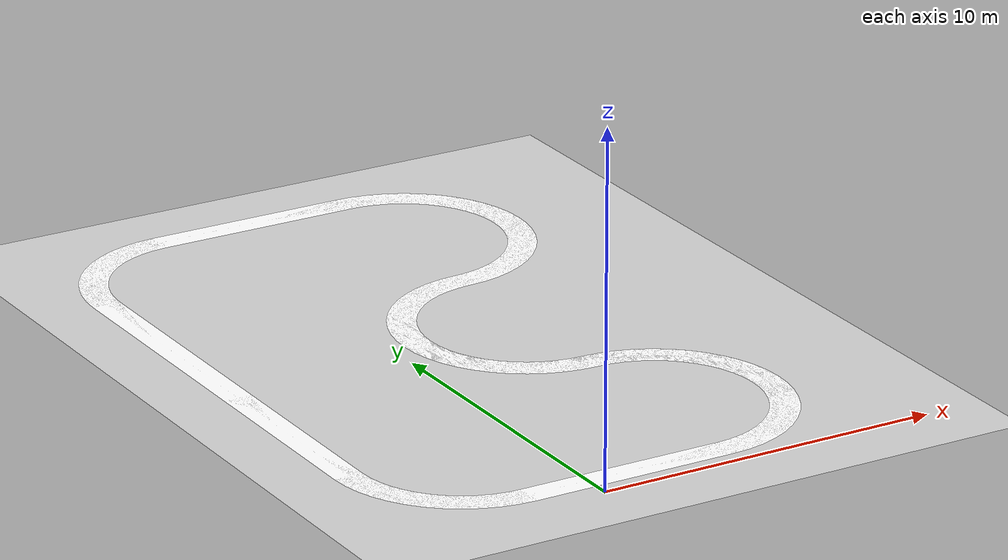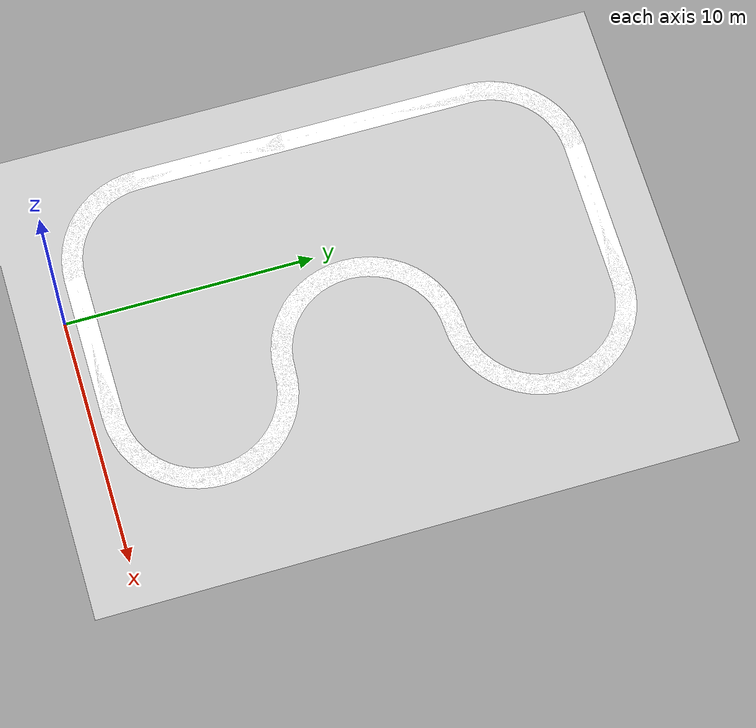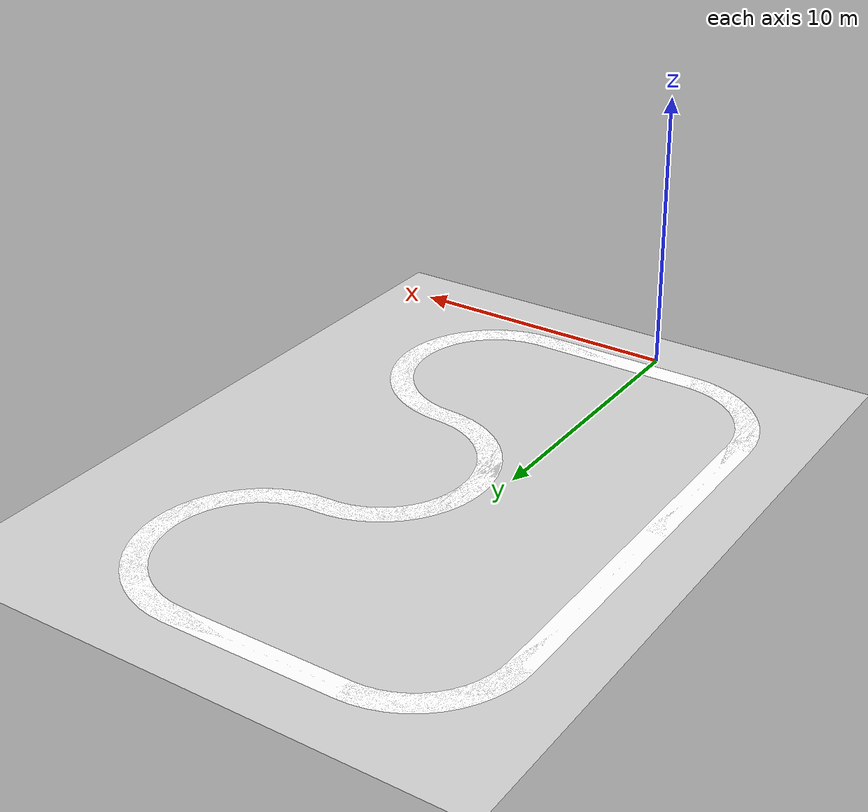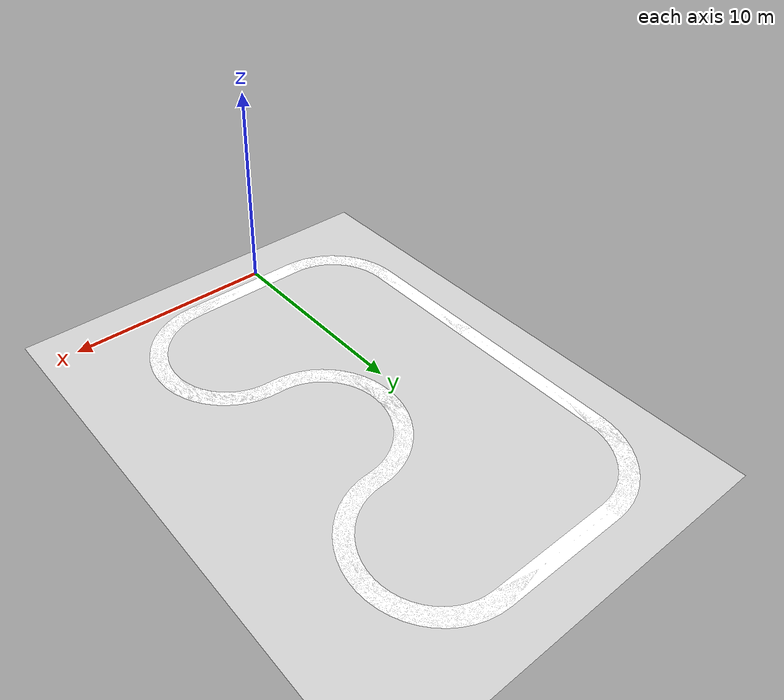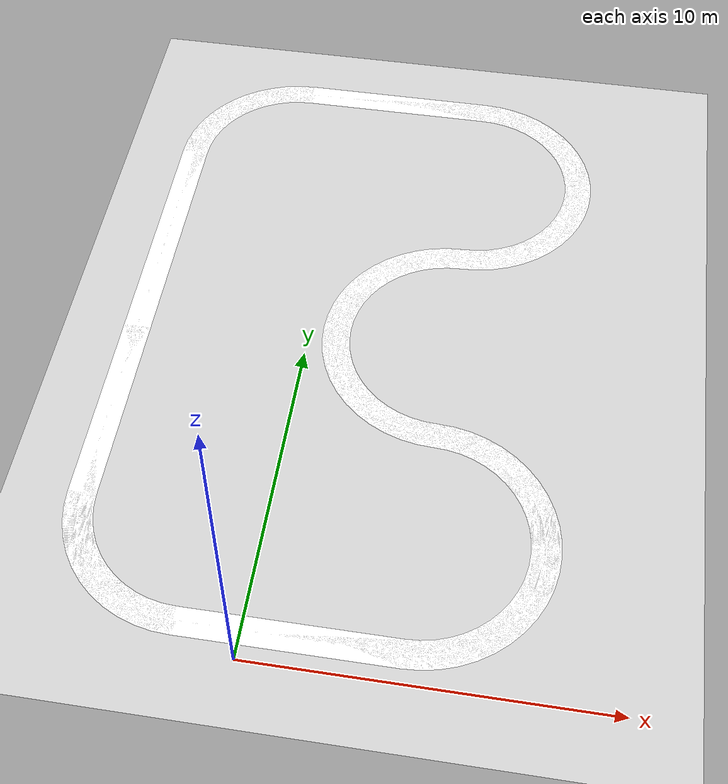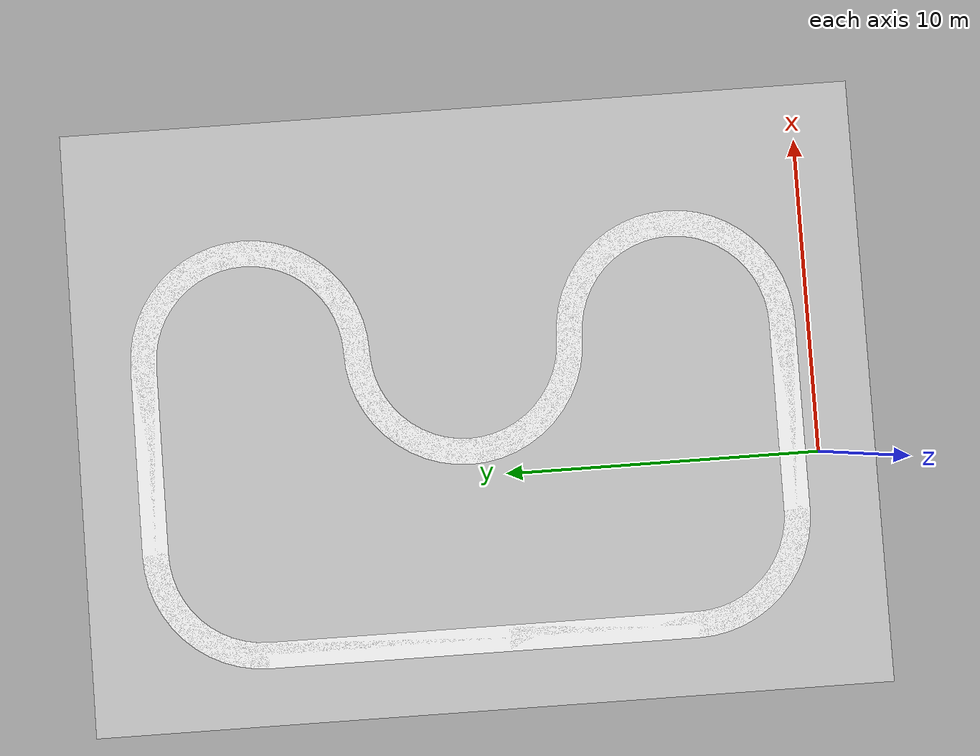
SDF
<?xml version="1.0" ?>
<sdf version="1.5">
  <world name="default">

    <include>
      <uri>model://ground_plane</uri>
      <pose> 0 0 -.0001 0 0 0 </pose>
    </include>

    <include>
      <uri>model://sun</uri>
    </include>

    <include>
      <uri>model://circuit2way_curved_v2</uri>
      <pose>-2.275 0.605 0 0 0 0</pose>
    </include>

  </world>
</sdf>

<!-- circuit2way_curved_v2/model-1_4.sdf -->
<sdf version="1.4">
  <model name="asphalt_plane">
    <static>true</static>
    <link name="link">
      <collision name='collision'>
          <geometry>
            <plane>
              <normal>0 0 1</normal>
              <size>3 44</size>
            </plane>
          </geometry>
          <surface>
            <friction>
              <ode>
                <mu>100</mu>
                <mu2>50</mu2>
              </ode>
            </friction>
            <bounce/>
            <contact>
              <ode/>
            </contact>
          </surface>
        </collision>
      <visual name="visual">
        <geometry>
          <mesh>
	         <uri>model://circuit2way_curved_v2/meshes/circuit_s.dae</uri>
         </mesh>
        </geometry>
      </visual>
      <velocity_decay>
          <linear>0</linear>
          <angular>0</angular>
      </velocity_decay>
      <self_collide>0</self_collide>
      <kinematic>0</kinematic>
      <gravity>1</gravity>
    </link>
  </model>
</sdf>
